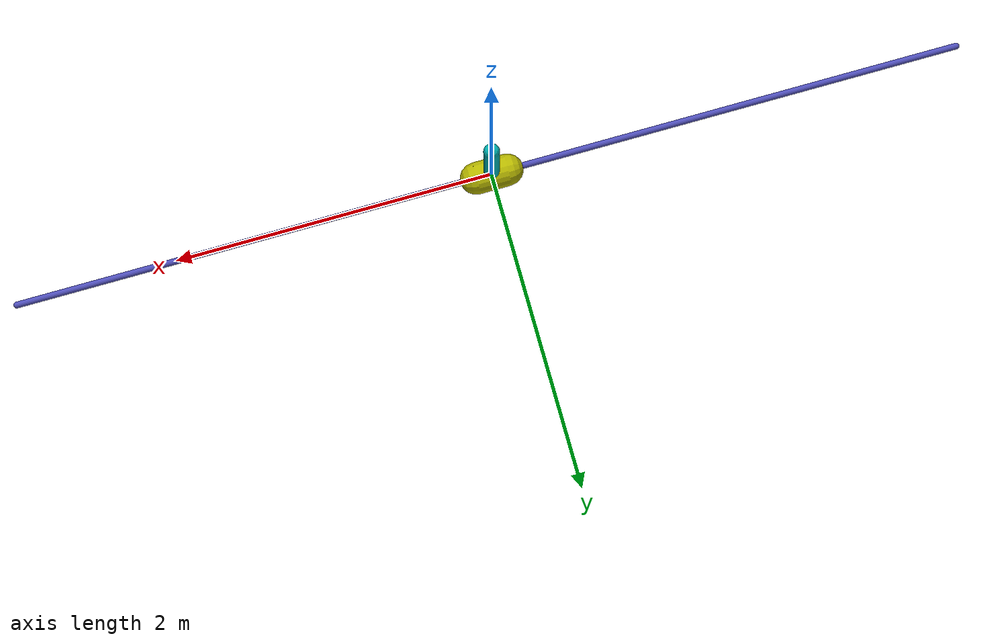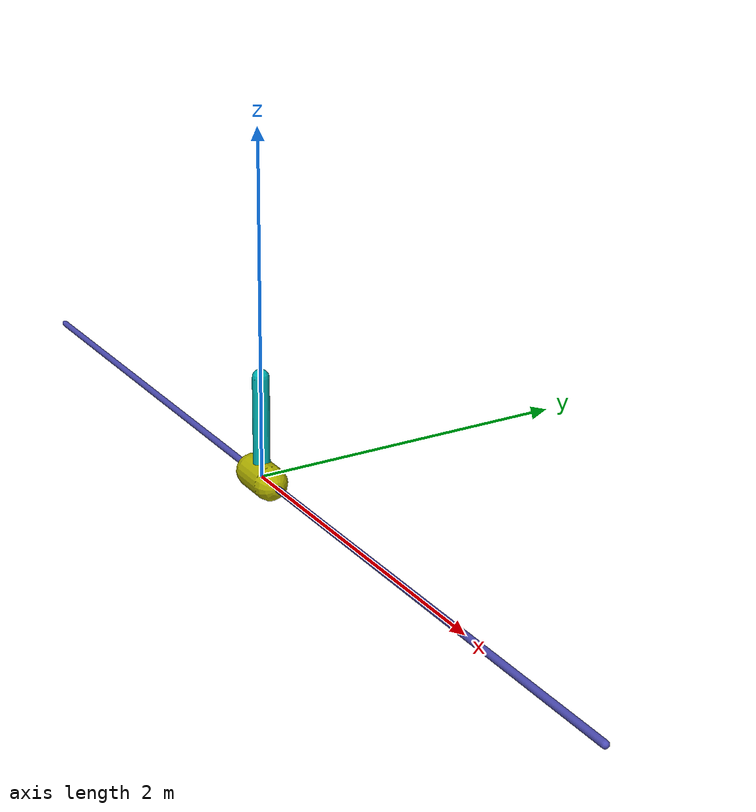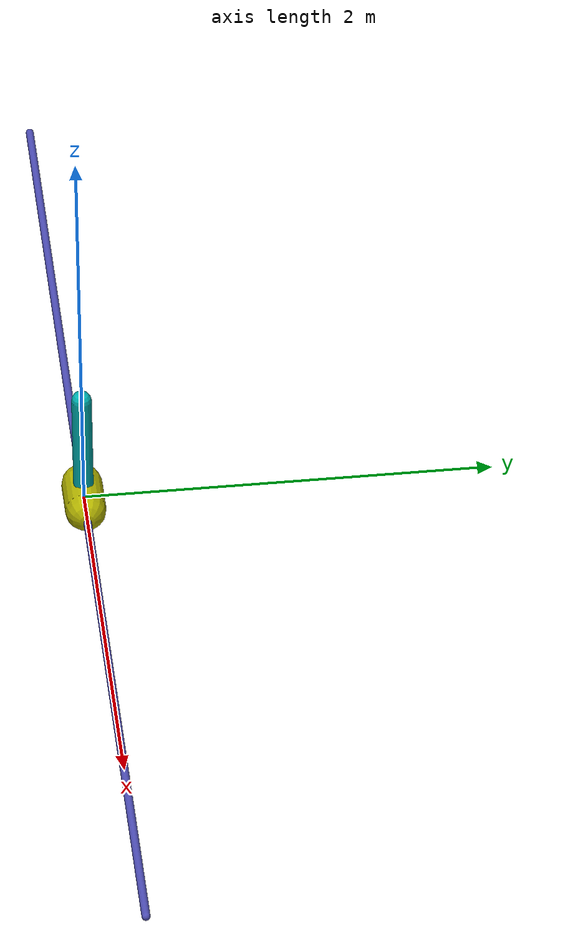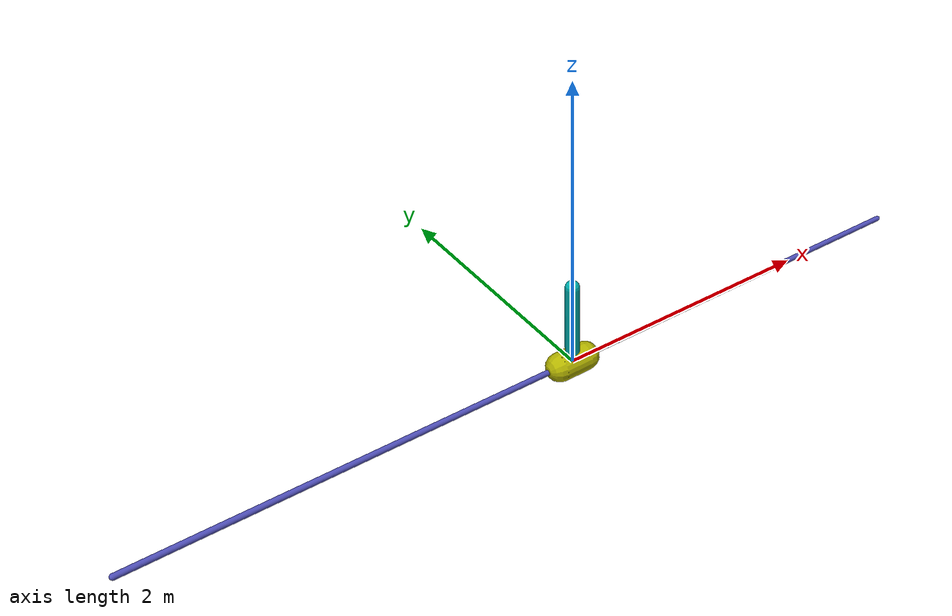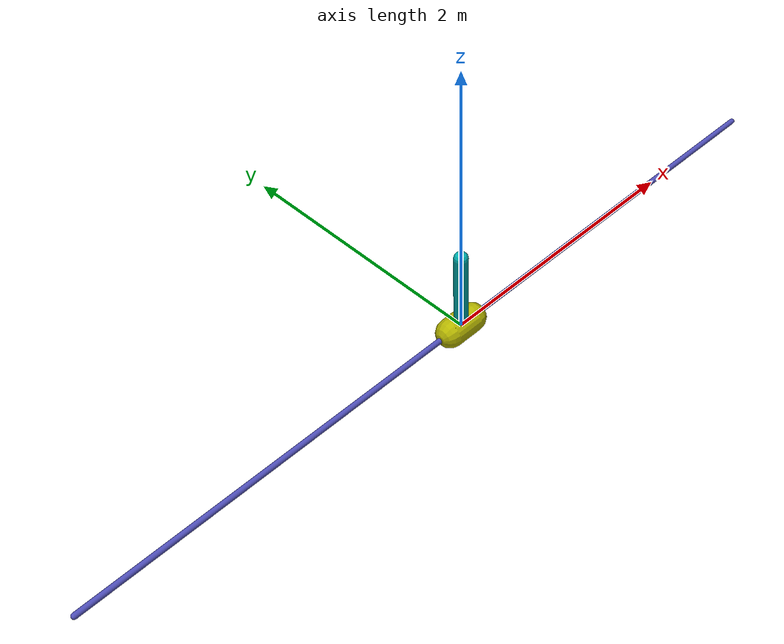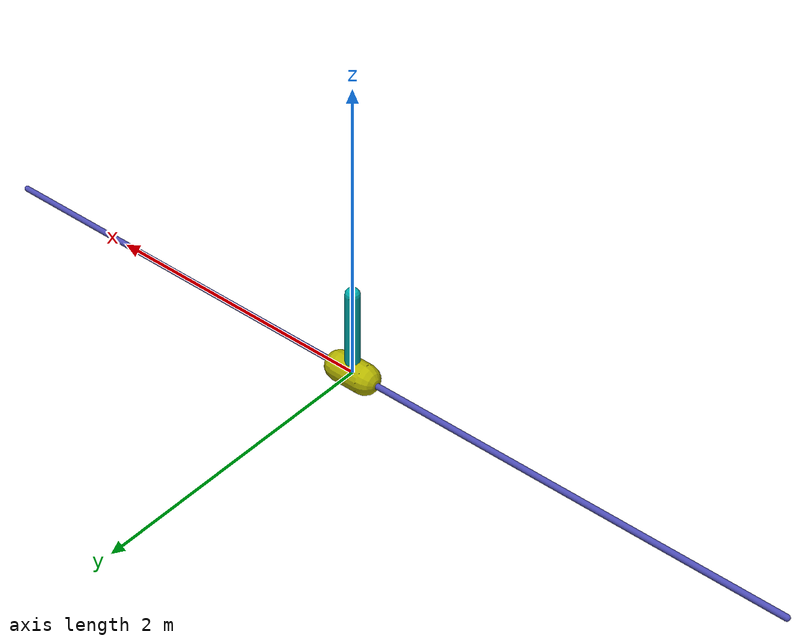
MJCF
<mujoco model="inverted pendulum">
	<compiler inertiafromgeom="true"/>
	<default>
		<joint armature="0" damping="1" limited="true"/>
		<geom contype="0" friction="1 0.1 0.1" rgba="0.7 0.7 0 1"/>
	</default>
	<option gravity="0 0 -9.81" integrator="RK4" timestep="0.00005"/>
	<asset>
	    <texture type="skybox" builtin="gradient" rgb1="0.3 0.5 0.7" rgb2="0 0 0" width="512" height="3072" />
	</asset>
  	<visual>
		<headlight diffuse="0.6 0.6 0.6" ambient="0.3 0.3 0.3" specular="0 0 0" />
		<rgba haze="0.15 0.25 0.35 1" />
	    <global offheight="2160" offwidth="3840"/>
    	<quality offsamples="8"/>
	</visual>
	<worldbody>
    	<light name="spotlight0" mode="targetbodycom" target="cart" pos="0 0 10" cutoff="60" />
		<light name="spotlight1" mode="targetbodycom" target="cart" pos="0.5 0 10" cutoff="60" />
		<geom name="rail" pos="0 0 0" quat="0.707 0 0.707 0" rgba="0.3 0.3 0.7 1" size="0.02 3" type="capsule"/>
		<body name="cart" pos="0 0 0">
			<joint axis="1 0 0" limited="true" name="slider" pos="0 0 0" range="-3 3" type="slide"/>
			<geom name="cart" pos="0 0 0" quat="0.707 0 0.707 0" size="0.1 0.1" type="capsule"/>
			<body name="pole" pos="0 0 0">
				<joint axis="0 1 0" name="hinge" pos="0 0 0" range="-1800 1800" type="hinge"/>
				<geom name="pole" type="capsule" size="0.049 0.3" pos="0 0 0.3" axisangle="1 0 0 0" rgba="0 0.7 0.7 1"/>
			</body>
		</body>
	</worldbody>
	<actuator>
		<motor joint="slider" gear="1" name="slide"/>
	</actuator>
  <keyframe>
    <key name="up"
      qpos="0 0.5"
      qvel="0 0"
    />
  </keyframe>
</mujoco>
